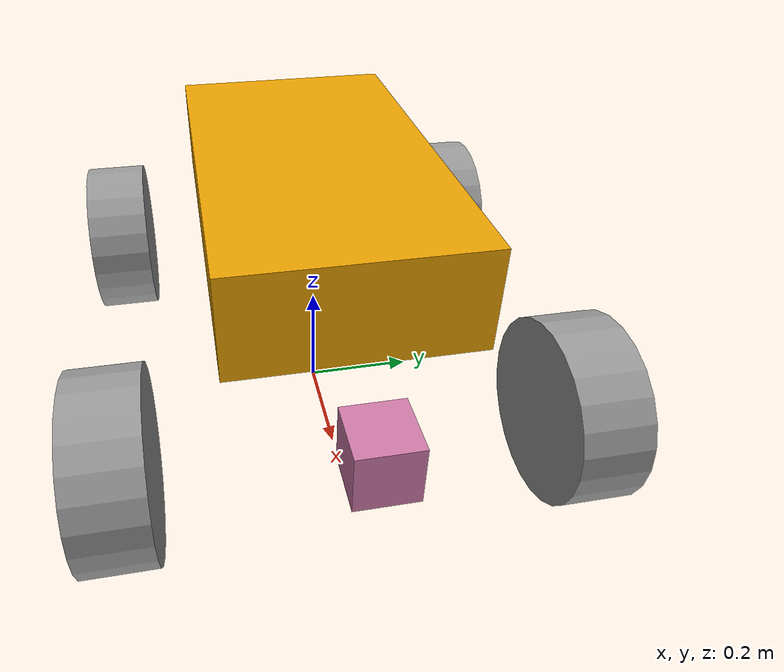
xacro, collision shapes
<?xml version='1.0'?>

<robot name="cali" xmlns:xacro="http://www.ros.org/wiki/xacro">
	<xacro:property name="robot_name" value="cali" />
	<xacro:property name="robot_chassis_mass" value="34.5"/>
	<xacro:property name="robot_chassis_length" value="0.7493"/>
	<xacro:property name="robot_chassis_width" value="0.41275"/>
    <xacro:property name="robot_chassis_height" value="0.1778"/>

	<xacro:property name="robot_wheel_mass" value="1"/>
	<xacro:property name="robot_wheel_length" value="0.12"/>
	<xacro:property name="robot_wheel_radius" value="0.16"/>

	<xacro:property name="camera_mass" value="0.1"/>
	<xacro:property name="hokoyu_mass" value="1e-5"/>
	<xacro:property name="pi" value="3.141592654"/>
	<xacro:property name="half_pi" value="1.570796327"/>

    <!--Inertia Calculator for a Box-->
    <xacro:macro name="box_inertia" params="mass x y z">
        <inertia  ixx="${mass*(y*y+z*z)/12.0}" ixy = "0" ixz = "0"
              iyy="${mass*(x*x+z*z)/12.0}" iyz = "0"
              izz="${mass*(x*x+y*y)/12.0}"
        />
    </xacro:macro>

	<!-- Make Chassis of Bot -->
	<link name="base_link">
		<pose>0 0 0 0 0 0</pose>

		<inertial>
			<mass value="${robot_chassis_mass}"/>
      		<origin xyz="-0.05 0 0.3429" rpy=" 0 0 0"/>
      		<xacro:box_inertia mass="${robot_chassis_mass}" x="${robot_chassis_length}" y="${robot_chassis_width}" z="${robot_chassis_height}"/>
		</inertial>

		<collision name="collision">
			<origin xyz="0 0 0.3429" rpy=" 0 0 0"/>
			<geometry>
				<box size="${robot_chassis_length} ${robot_chassis_width} ${robot_chassis_height}"/>
			</geometry>
		</collision>

		<visual name="chassis_visual">
			<origin xyz="0 0 0.3429" rpy=" 0 0 ${half_pi}"/>
			<geometry>
				<mesh filename="package://rover_autonav/meshes_v2/base_link_armless.STL" />
			</geometry>

		</visual>

	</link>

	<!-- Right Wheel Back -->
	<link name="right_wheel_back">
		<inertial>
			<mass value="${robot_wheel_mass}"/>
			<origin xyz="0 0 0" rpy="1.5707 1.5707 -1.5707"/>
			<inertia
				ixx="0.009733333333333333" ixy="0.0" ixz="0.0"
				iyy="0.017066666666666667" iyz="0.0"
				izz="0.009733333333333333"
			/>
		</inertial>

		<visual>
			<origin xyz="0 0 0" rpy="1.5707 0.0 -1.5707"/>
			<geometry>
				<mesh filename="package://rover_autonav/meshes_v2/wheel.STL" />
			</geometry>
		</visual>

		<collision>
			<origin xyz="0 0 0" rpy="1.5707 0 0"/>
			<geometry>
				<cylinder radius="${robot_wheel_radius}" length="${robot_wheel_length}"/>
			</geometry>
		</collision>

	</link>

	<!-- Right Wheel Front-->
	<link name="right_wheel_front">
		<inertial>
			<mass value="${robot_wheel_mass}"/>
			<origin xyz="0 0 0" rpy="1.5707 1.5707 -1.5707"/>
			<inertia
				ixx="0.009733333333333333" ixy="0.0" ixz="0.0"
				iyy="0.017066666666666667" iyz="0.0"
				izz="0.009733333333333333"
			/>
		</inertial>

		<visual>
			<origin xyz="0 0 0" rpy="1.5707 0.0 -1.5707"/>
			<geometry>
				<mesh filename="package://rover_autonav/meshes_v2/wheel.STL" />
			</geometry>
		</visual>

		<collision>
			<origin xyz="0 0 0" rpy="1.5707 0.0 0"/>
			<geometry>
				<cylinder radius="${robot_wheel_radius}" length="${robot_wheel_length}"/>
			</geometry>
		</collision>

	</link>

	<!-- Left wheel Back-->
	<link name="left_wheel_back">
		<inertial>
			<mass value="${robot_wheel_mass}"/>
			<origin xyz="0 0 0" rpy="1.5707 1.5707 -1.5707"/>
			<inertia
				ixx="0.009733333333333333" ixy="0.0" ixz="0.0"
				iyy="0.017066666666666667" iyz="0.0"
				izz="0.009733333333333333"
			/>
		</inertial>

		<visual>
			<origin xyz="0 0 0" rpy="1.5707 0.0 -1.5707"/>
			<geometry>
				<mesh filename="package://rover_autonav/meshes_v2/wheel.STL" />
			</geometry>
		</visual>

		<collision>
			<origin xyz="0 0 0" rpy="1.5707 0.0 0"/>
			<geometry>
				<cylinder radius="${robot_wheel_radius}" length="${robot_wheel_length}"/>
			</geometry>
		</collision>

	</link>

	<!-- Left wheel Front-->
	<link name="left_wheel_front">
		<inertial>
			<mass value="${robot_wheel_mass}"/>
			<origin xyz="0 0 0" rpy="1.5707 1.5707 -1.5707"/>
			<inertia
				ixx="0.009733333333333333" ixy="0.0" ixz="0.0"
				iyy="0.017066666666666667" iyz="0.0"
				izz="0.009733333333333333"
			/>
		</inertial>

		<visual>
			<origin xyz="0 0 0" rpy="1.5707 0.0 -1.5707"/>
			<geometry>
				<mesh filename="package://rover_autonav/meshes_v2/wheel.STL" />
			</geometry>
		</visual>

		<collision>
			<origin xyz="0 0 0" rpy="1.5707 0.0 0"/>
			<geometry>
				<cylinder radius="${robot_wheel_radius}" length="${robot_wheel_length}"/>
			</geometry>
		</collision>

	</link>

	<!-- Project center to the ground -->
	<link name="robot_footprint"></link>

	<!-- Camera -->

	<!-- Hokuyo Lidar -->
	<link name="hokuyo">
		<inertial>
			<mass value="${hokoyu_mass}"/>
			<origin xyz="0 0 0" rpy="0 0 0"/>

			<inertia
		        ixx="1e-6" ixy="0.0" ixz="0.0"
		        iyy="1e-6" iyz="0.0"
		        izz="1e-6"
		      />
		</inertial>

		<visual>
			<origin xyz="0 0 0" rpy="0 0 0"/>
			<geometry>
				<mesh filename="package://rover_autonav/meshes/hokuyo.dae"/>
			</geometry>
		</visual>

		<collision>
			<origin xyz="0 0 0" rpy="0 0 0"/>
			<geometry>
				<box size="0.1 0.1 0.1"/>
			</geometry>
		</collision>
	</link>

		<!-- Define Joints -->

	<!-- Right Wheel Joint Back-->
	<joint type="continuous" name="right_wheel_hinge_back">
	    <origin xyz="-0.38 -0.38 0.081" rpy="0 0 0" />
	    <parent link="base_link"/>
	    <child link="right_wheel_back" />
	    <axis xyz="0 1 0" rpy="0 0 0" />
	    <limit effort="10000" velocity="1000" />
	    <dynamics damping="1.0" friction="10.0" />
	</joint>

	<!-- Right Wheel Joint Front-->
	<joint type="continuous" name="right_wheel_hinge_front">
	    <origin xyz="0.345 -0.38 0.081" rpy="0 0 0" />
	    <parent link="base_link"/>
	    <child link="right_wheel_front" />
	    <axis xyz="0 1 0" rpy="0 0 0" />
	    <limit effort="10000" velocity="1000" />
	    <dynamics damping="1.0" friction="10.0" />
	</joint>

	<!-- Left Wheel Joint Back-->
	<joint type="continuous" name="left_wheel_hinge_back">
	    <origin xyz="-0.38 0.38 0.081" rpy="0 0 0" />
	    <parent link="base_link"/>
	    <child link="left_wheel_back" />
	    <axis xyz="0 1 0" rpy="0 0 0" />
	    <limit effort="10000" velocity="1000" />
	    <dynamics damping="1.0" friction="10.0" />
	</joint>

	<!-- Left Wheel Joint Front-->
	<joint type="continuous" name="left_wheel_hinge_front">
	    <origin xyz="0.345 0.38 0.081" rpy="0 0 0" />
	    <parent link="base_link"/>
	    <child link="left_wheel_front" />
	    <axis xyz="0 1 0" rpy="0 0 0" />
	    <limit effort="10000" velocity="1000" />
	    <dynamics damping="1.0" friction="10.0" />
	</joint>

	<!-- Footprint joint-->
	<joint name="robot_footprint_joint" type="fixed">
		<origin xyz="0 0 0.079" rpy="0 0 0" />
		<parent link="robot_footprint"/>
		<child link="base_link" />
	</joint>

	<!-- Camera Joint -->

	<!-- Hokoyu Joint -->
	<joint name="hokuyo_joint" type="fixed">
	    <origin xyz="0.5 0 0.2" rpy="0 0 0" />
	    <parent link="base_link"/>
	    <child link="hokuyo" />
	    <axis xyz="0 1 0"/>
	</joint>

	<!-- JOIN ARM URDF !!!!!!!!!!!!!!!!!!-->

	<!-- Color of bot -->
	<gazebo reference="left_wheel_front">
		<material>Gazebo/Grey</material>
		<kp>1000000.0</kp> <!-- kp and kd for rubber -->
		<kd>100.0</kd>
		<mu1>1.0</mu1>
		<mu2>1.0</mu2>
		<maxVel>1.0</maxVel>
		<minDepth>0.00</minDepth>
	</gazebo>

	<gazebo reference="left_wheel_back">
		<material>Gazebo/Grey</material>
		<kp>1000000.0</kp> <!-- kp and kd for rubber -->
		<kd>100.0</kd>
		<mu1>1.0</mu1>
		<mu2>1.0</mu2>
		<maxVel>1.0</maxVel>
		<minDepth>0.00</minDepth>
	</gazebo>

	<gazebo reference="right_wheel_front">
		<material>Gazebo/Grey</material>
		<kp>1000000.0</kp> <!-- kp and kd for rubber -->
		<kd>100.0</kd>
		<mu1>1.0</mu1>
		<mu2>1.0</mu2>
		<maxVel>1.0</maxVel>
		<minDepth>0.00</minDepth>
	</gazebo>
	<gazebo reference="right_wheel_back">
		<material>Gazebo/Grey</material>
		<kp>1000000.0</kp> <!-- kp and kd for rubber -->
		<kd>100.0</kd>
		<mu1>1.0</mu1>
		<mu2>1.0</mu2>
		<maxVel>1.0</maxVel>
		<minDepth>0.00</minDepth>
	</gazebo>

	<gazebo reference="camera">
		<material>Gazebo/Red</material>
	</gazebo>

	<gazebo reference="base_link">
		<material>Gazebo/Dark</material>
	</gazebo>

	<!-- Motor, Camera and Lidar Simulation -->
	<xacro:include filename="$(find rover_autonav)/urdf/rosbob_v3.gazebo" />

</robot>
